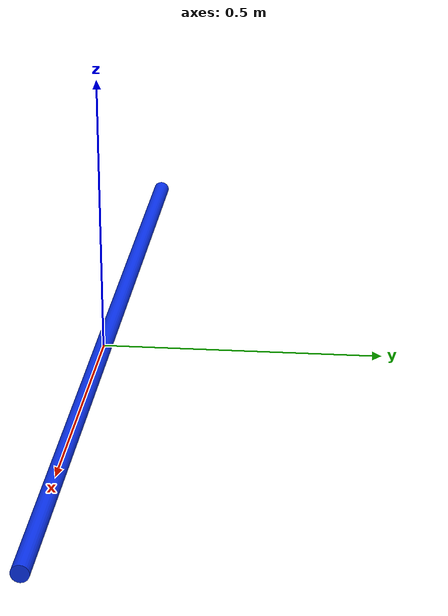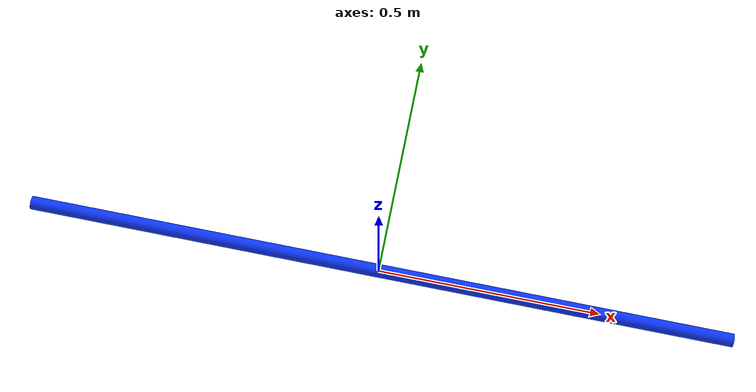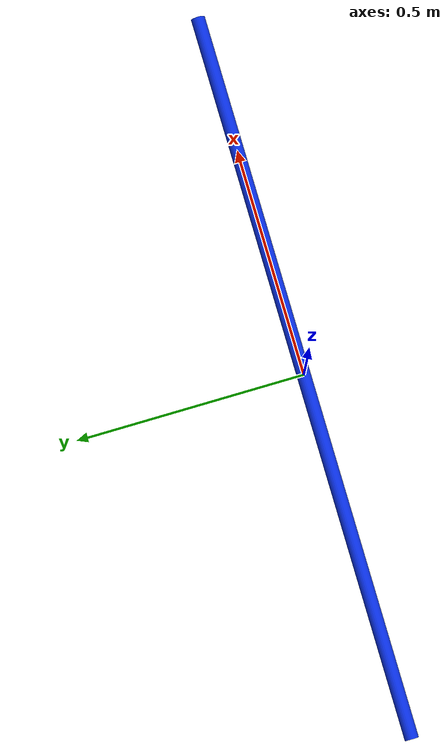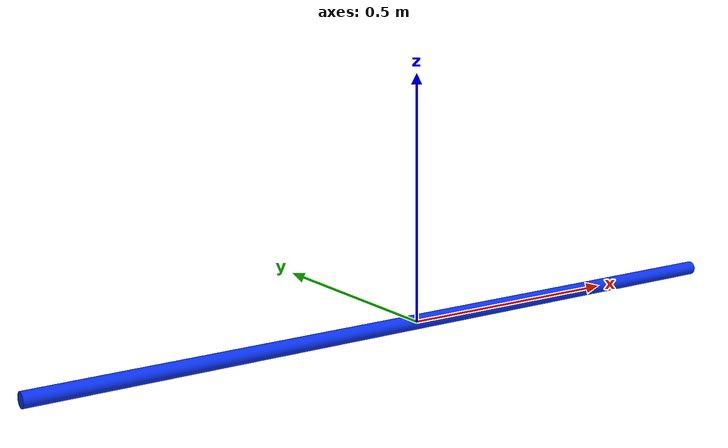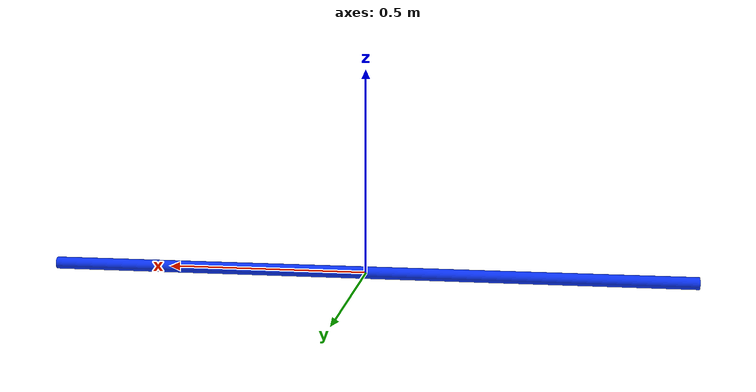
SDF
<?xml version="1.0"?>
<sdf version="1.9">
  <model name="imav2026_blue_bar">
    <static>true</static>

    <link name="blue_bar_link">
      <visual name="blue_bar_visual">
        <pose>0 0 0 0 1.570796 0</pose>
        <geometry>
          <cylinder>
            <radius>0.015</radius>
            <length>1.6</length>
          </cylinder>
        </geometry>
        <material>
          <ambient>0.02 0.12 0.85 1</ambient>
          <diffuse>0.04 0.20 0.95 1</diffuse>
          <specular>0.10 0.15 0.30 1</specular>
        </material>
      </visual>

      <collision name="blue_bar_collision">
        <pose>0 0 0 0 1.570796 0</pose>
        <geometry>
          <cylinder>
            <radius>0.015</radius>
            <length>1.6</length>
          </cylinder>
        </geometry>
      </collision>
    </link>
  </model>
</sdf>
